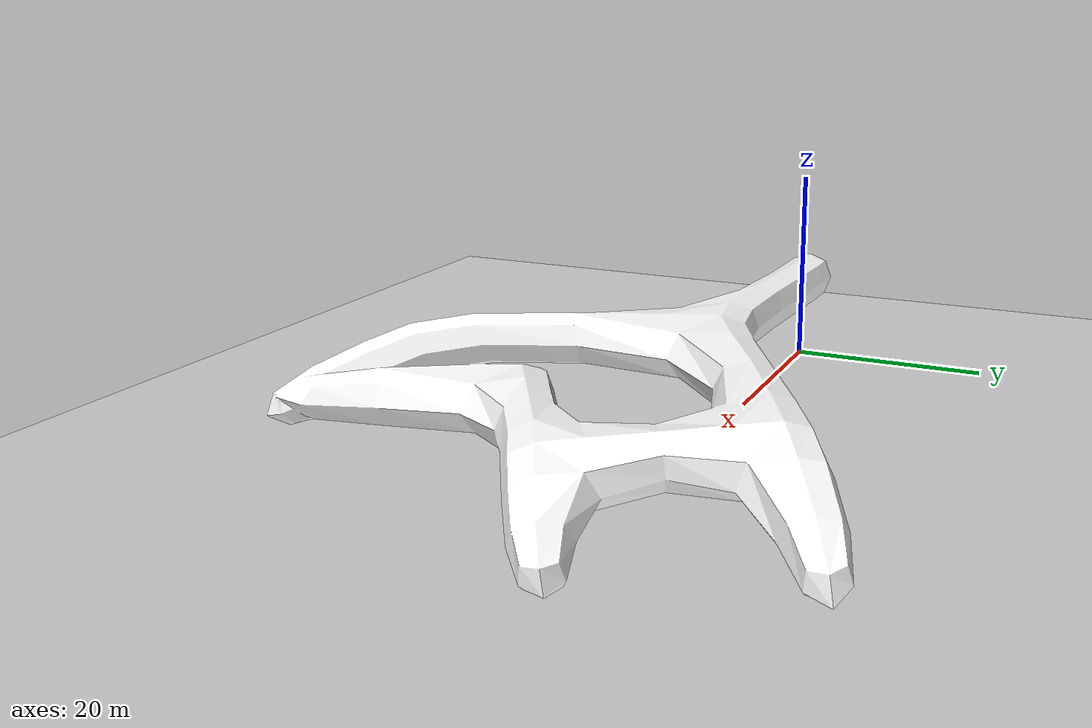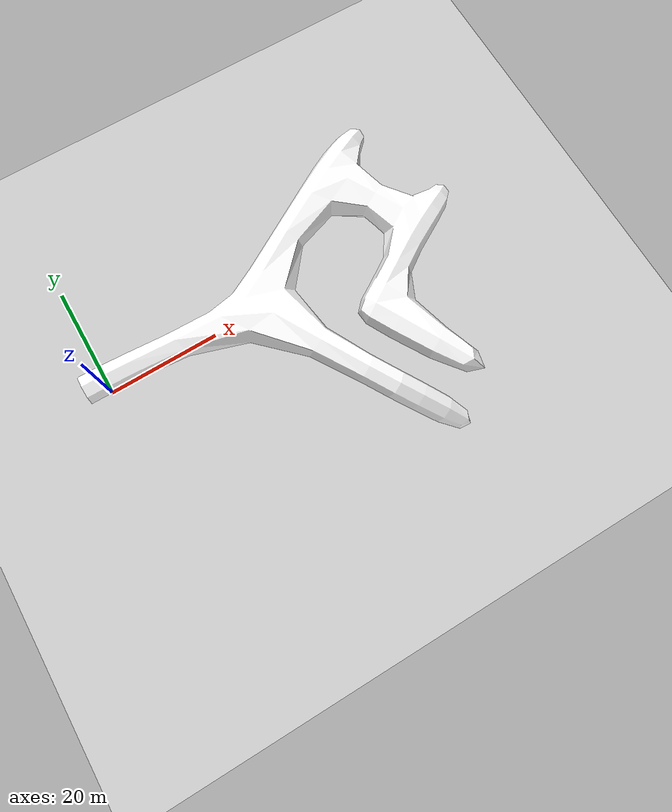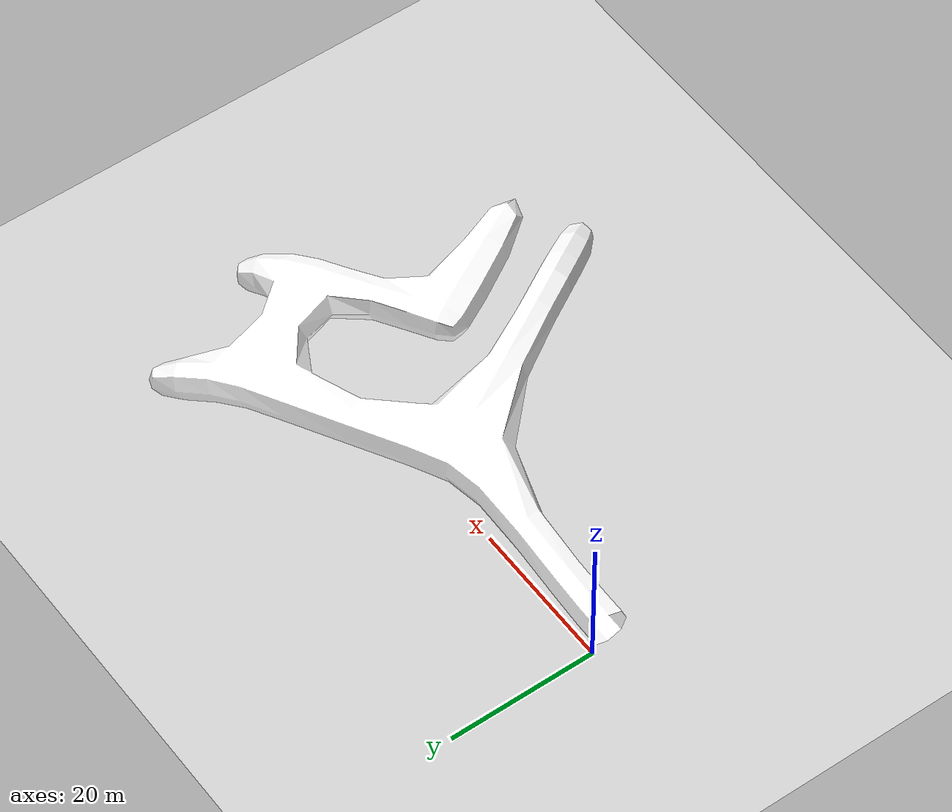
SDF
<?xml version="1.0" ?>
<sdf version="1.7">
  <world name="default">
    <include>
      <uri>model://map2</uri>
      <pose>0 0 0 1.5708 0 0</pose>
    </include>
    <include>
      <uri>model://sun</uri>
    </include>
    <include>
      <uri>model://ground_plane</uri>
    </include>
    <physics type="ode">
      <max_step_size>0.005</max_step_size>
      <real_time_factor>1.0</real_time_factor>
      <real_time_update_rate>200</real_time_update_rate>
      <ode>
        <solver>
          <type>quick</type>
          <iters>50</iters> </solver>
      </ode>
    </physics>
  </world>
</sdf>

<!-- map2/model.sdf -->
<sdf version="1.7">
  <model name="test">
    <static>true</static>
    <link name="testlink">
      <visual name="Cylinder">
        <geometry>
          <mesh>
            <uri>meshes/model.dae</uri>
            <submesh>
              <name>Cylinder</name>
            </submesh>
          </mesh>
        </geometry>
        <material>
          <diffuse>1.0 1.0 1.0 1.0</diffuse>
          <specular>0.0 0.0 0.0 1.0</specular>
          <pbr>
            <metal/>
          </pbr>
        </material>
      </visual>
      <visual name="Cube">
        <geometry>
          <mesh>
            <uri>meshes/model.dae</uri>
            <submesh>
              <name>Cube</name>
            </submesh>
          </mesh>
        </geometry>
        <material>
          <diffuse>1.0 1.0 1.0 1.0</diffuse>
          <specular>0.0 0.0 0.0 1.0</specular>
          <pbr>
            <metal/>
          </pbr>
        </material>
      </visual>
      <light name="Point" type="point">
        <diffuse>1.0 1.0 1.0 1.0</diffuse>
        <attenuation>
          <range>40.0</range>
          <linear>0.0</linear>
          <quadratic>1.0</quadratic>
          <constant>1.0</constant>
        </attenuation>
        <cast_shadows>true</cast_shadows>
        <intensity>1.0</intensity>
      </light>
      <light name="Point.001" type="point">
        <diffuse>1.0 1.0 1.0 1.0</diffuse>
        <attenuation>
          <range>40.0</range>
          <linear>0.0</linear>
          <quadratic>1.0</quadratic>
          <constant>1.0</constant>
        </attenuation>
        <cast_shadows>true</cast_shadows>
        <intensity>1.0</intensity>
      </light>
      <collision name="collision">
        <geometry>
          <mesh>
            <uri>meshes/model.dae</uri>
          </mesh>
        </geometry>
        <surface>
          <contact>
            <collide_bitmask>0x01</collide_bitmask>
          </contact>
        </surface>
      </collision>
    </link>
  </model>
</sdf>
